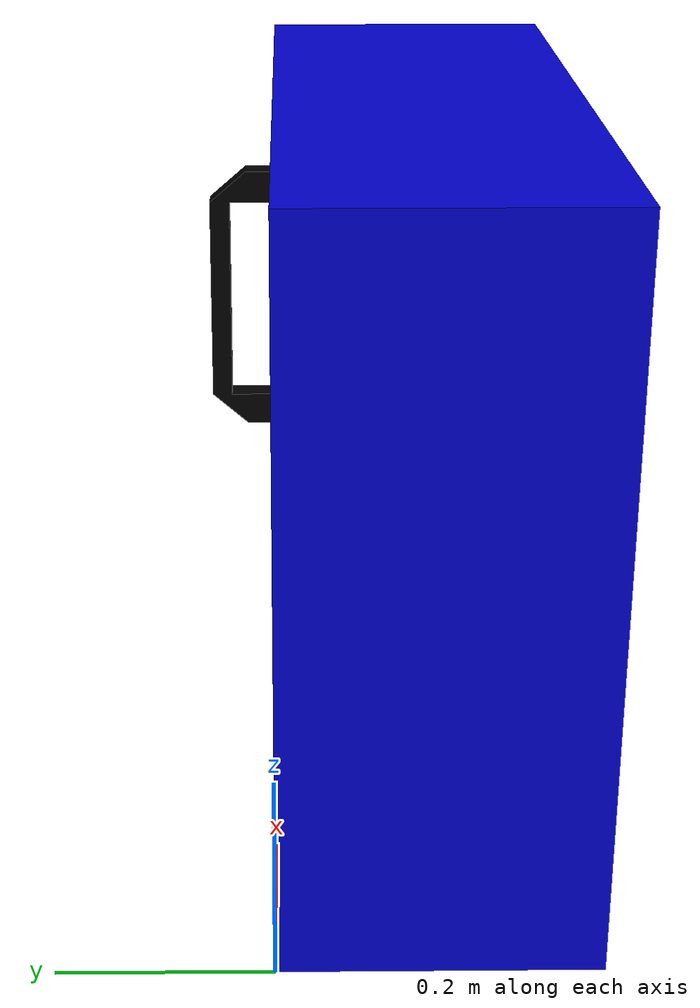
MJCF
<mujoco model="cabinet">
    <compiler angle="radian" />
    <size njmax="500" nconmax="100" />
    <asset>
        <mesh name="cabinet_body" file="./cabinet/cabinet_body.STL" scale="0.001 0.001 0.001" />
        <mesh name="cabinet_door" file="./cabinet/cabinet_door.STL" scale="0.001 0.001 0.001" />
        <mesh name="cabinet_knob" file="./cabinet/cabinet_knob.STL" scale="0.001 0.001 0.001" />
    </asset>
    <worldbody>
        <geom quat="0.707388 0.706825 0 0" type="mesh" contype="0" conaffinity="0" group="1" rgba="0 0 0.8 1" mesh="cabinet_body" />
        <body name="door_link" pos="0.774 -0.0055 0.095">
            <inertial pos="-0.0322282 0.000814966 0.0321541" quat="0.706133 -0.0631938 -0.0614386 0.702573" mass="1.343" diaginertia="0.115549 0.0813332 0.0350412" />
            <joint name="base_to_door" pos="0 0 0" axis="0 0 1" limited="true" range="0 1.0" />
            <geom pos="0.006 -0.0055 0" quat="0.000563312 0.000562864 0.706825 0.707388" type="mesh" contype="0" conaffinity="0" group="1" rgba="1 1 1 1" mesh="cabinet_door" />
            <geom pos="-0.2175 0.0055 0.217" type="mesh" contype="0" conaffinity="0" group="1" rgba="0 0 0 1" mesh="cabinet_knob" />
        </body>
    </worldbody>
</mujoco>
